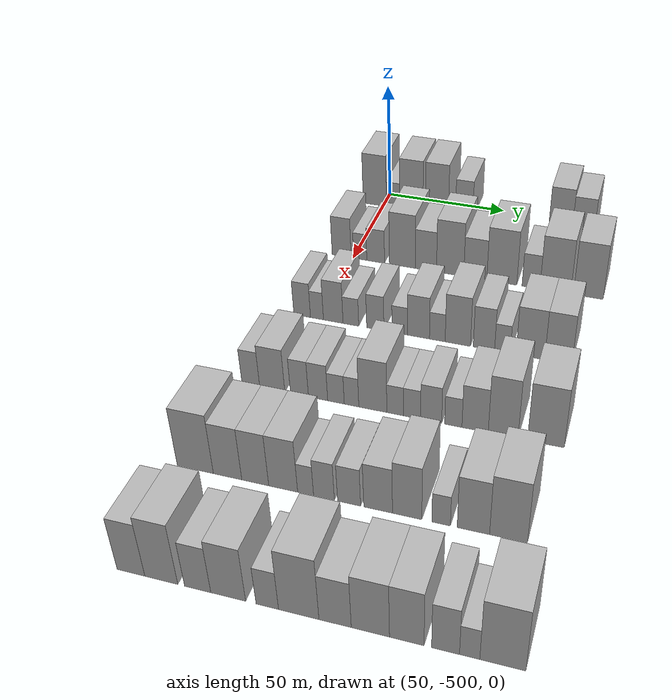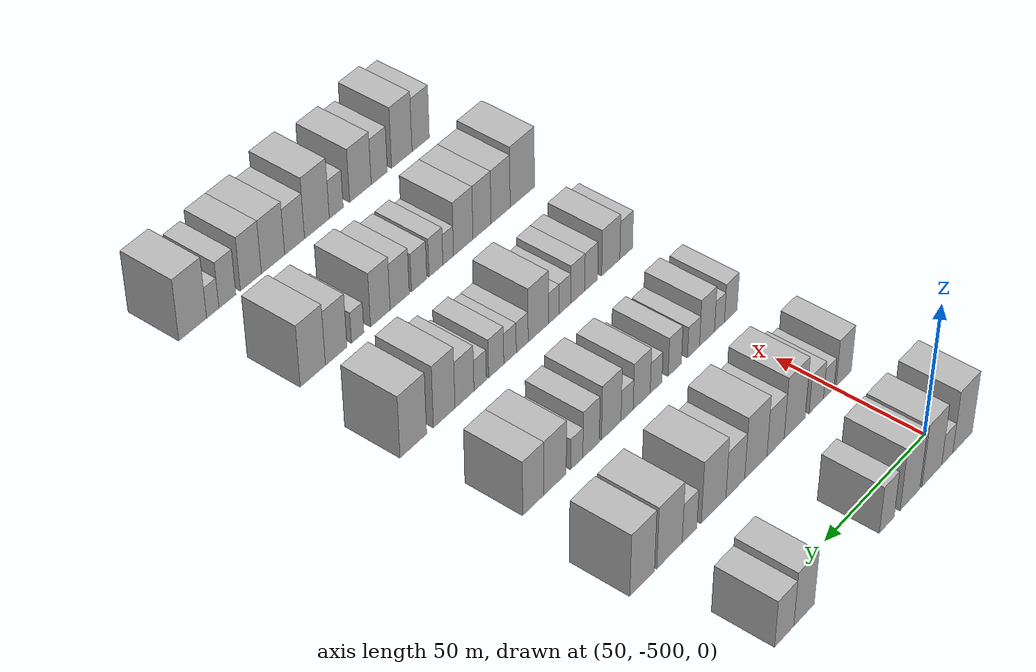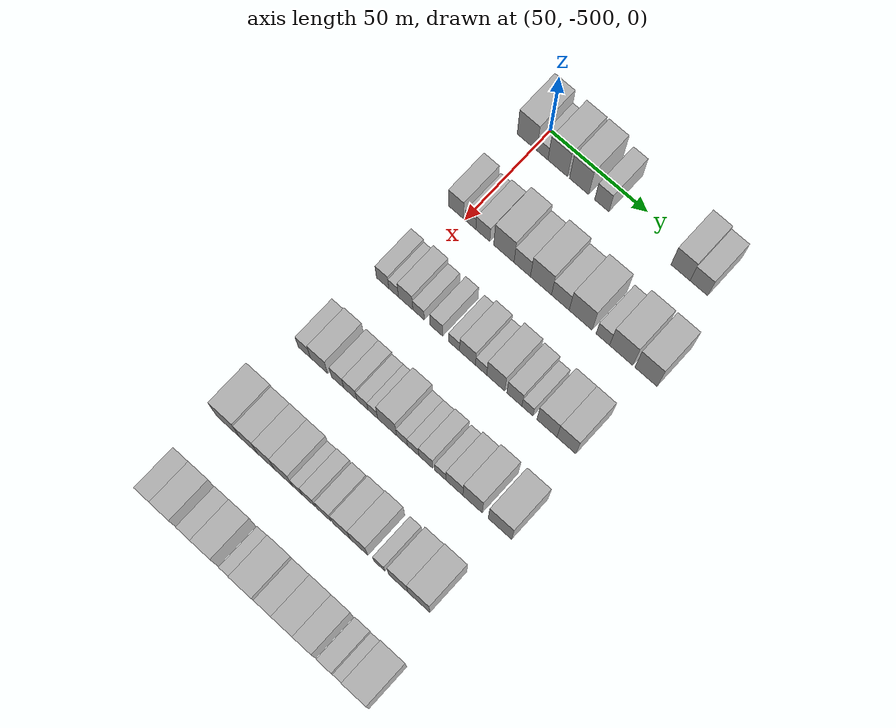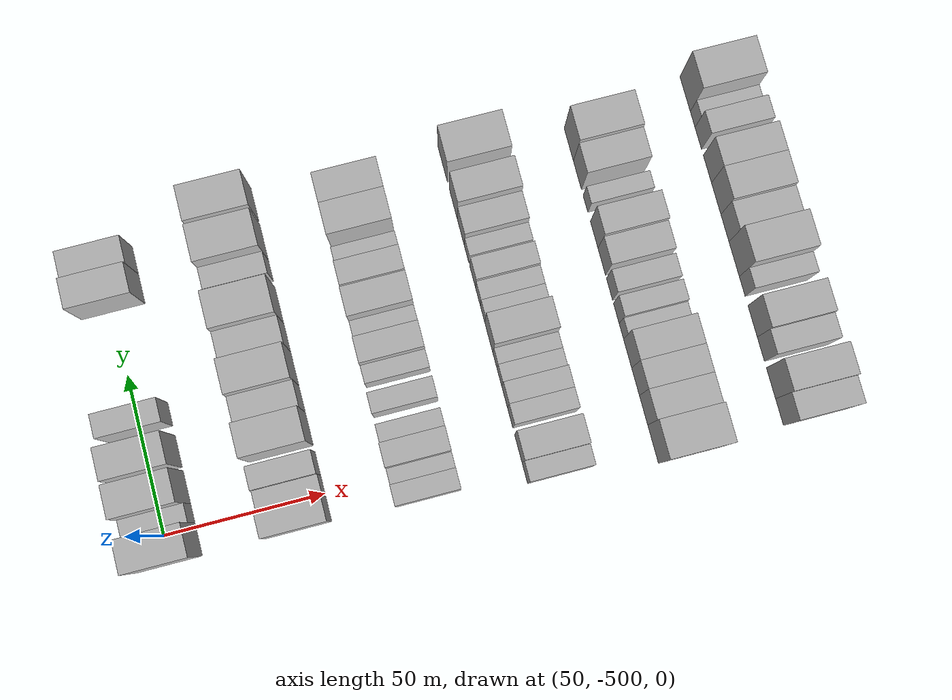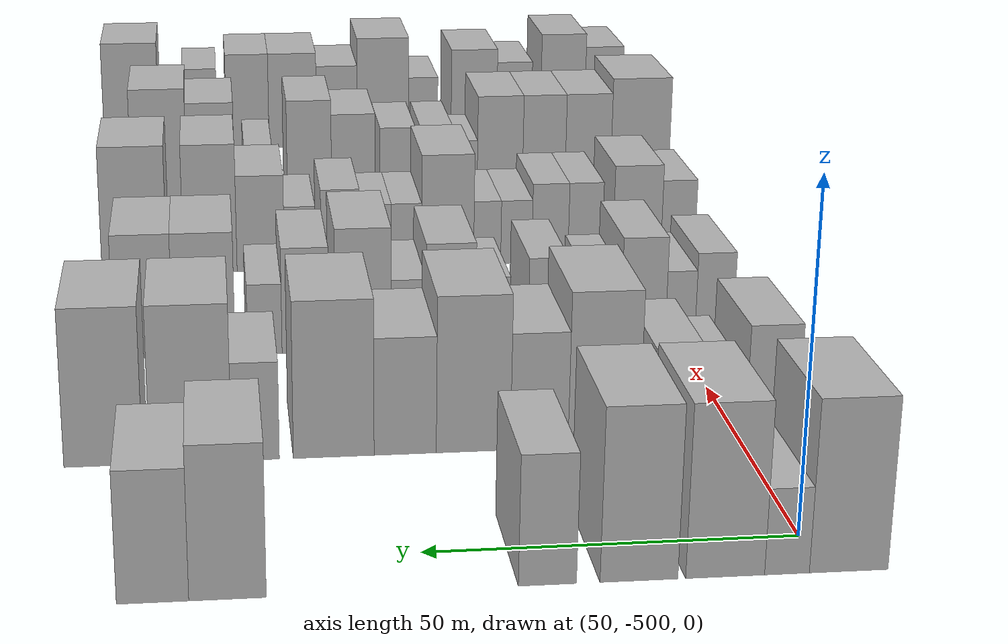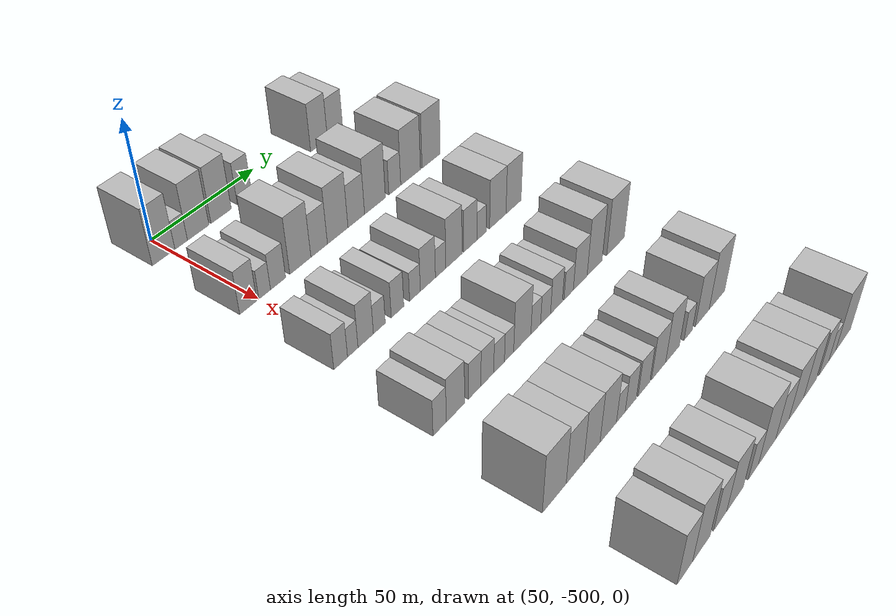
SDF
<sdf version="1.6">
 <world name="default">
  <model name="building_11">
   <static>1</static>
   <pose>50.0000 -503.6404 0 0.000000 0.000000 0.000000</pose>
   <link name="link">
    <pose>0 0 12.00 0 0 0</pose>
    <collision name="collision"><geometry><box><size>20.0000 10.2537 24.0000</size></box></geometry></collision>
    <visual name="visual">
     <cast_shadows>0</cast_shadows>
     <geometry><box><size>20.0000 10.2537 24.0000</size></box></geometry>
     <material>
      <script>
       <uri>model://HANNAS_wall/materials/scripts</uri>
       <uri>model://HANNAS_wall/materials/textures</uri>
       <name>vrc/HANNAS_wall</name>
      </script>
     </material>
    </visual>
   </link>
  </model>
  <model name="building_12">
   <static>1</static>
   <pose>50.0000 -495.6090 0 0.000000 0.000000 0.000000</pose>
   <link name="link">
    <pose>0 0 6.00 0 0 0</pose>
    <collision name="collision"><geometry><box><size>20.0000 5.8091 12.0000</size></box></geometry></collision>
    <visual name="visual">
     <cast_shadows>0</cast_shadows>
     <geometry><box><size>20.0000 5.8091 12.0000</size></box></geometry>
     <material>
      <script>
       <uri>model://HANNAS_wall/materials/scripts</uri>
       <uri>model://HANNAS_wall/materials/textures</uri>
       <name>vrc/HANNAS_wall</name>
      </script>
     </material>
    </visual>
   </link>
  </model>
  <model name="building_13">
   <static>1</static>
   <pose>50.0000 -487.6144 0 0.000000 0.000000 0.000000</pose>
   <link name="link">
    <pose>0 0 12.00 0 0 0</pose>
    <collision name="collision"><geometry><box><size>20.0000 10.1801 24.0000</size></box></geometry></collision>
    <visual name="visual">
     <cast_shadows>0</cast_shadows>
     <geometry><box><size>20.0000 10.1801 24.0000</size></box></geometry>
     <material>
      <script>
       <uri>model://HANNAS_wall/materials/scripts</uri>
       <uri>model://HANNAS_wall/materials/textures</uri>
       <name>vrc/HANNAS_wall</name>
      </script>
     </material>
    </visual>
   </link>
  </model>
  <model name="building_14">
   <static>1</static>
   <pose>50.0000 -476.5391 0 0.000000 0.000000 0.000000</pose>
   <link name="link">
    <pose>0 0 12.00 0 0 0</pose>
    <collision name="collision"><geometry><box><size>20.0000 9.9705 24.0000</size></box></geometry></collision>
    <visual name="visual">
     <cast_shadows>0</cast_shadows>
     <geometry><box><size>20.0000 9.9705 24.0000</size></box></geometry>
     <material>
      <script>
       <uri>model://HANNAS_wall/materials/scripts</uri>
       <uri>model://HANNAS_wall/materials/textures</uri>
       <name>vrc/HANNAS_wall</name>
      </script>
     </material>
    </visual>
   </link>
  </model>
  <model name="building_15">
   <static>1</static>
   <pose>50.0000 -464.8646 0 0.000000 0.000000 0.000000</pose>
   <link name="link">
    <pose>0 0 9.00 0 0 0</pose>
    <collision name="collision"><geometry><box><size>20.0000 7.3786 18.0000</size></box></geometry></collision>
    <visual name="visual">
     <cast_shadows>0</cast_shadows>
     <geometry><box><size>20.0000 7.3786 18.0000</size></box></geometry>
     <material>
      <script>
       <uri>model://HANNAS_wall/materials/scripts</uri>
       <uri>model://HANNAS_wall/materials/textures</uri>
       <name>vrc/HANNAS_wall</name>
      </script>
     </material>
    </visual>
   </link>
  </model>
  <model name="building_16">
   <static>1</static>
   <pose>50.0000 -424.8164 0 0.000000 0.000000 0.000000</pose>
   <link name="link">
    <pose>0 0 10.50 0 0 0</pose>
    <collision name="collision"><geometry><box><size>20.0000 9.5725 21.0000</size></box></geometry></collision>
    <visual name="visual">
     <cast_shadows>0</cast_shadows>
     <geometry><box><size>20.0000 9.5725 21.0000</size></box></geometry>
     <material>
      <script>
       <uri>model://HANNAS_wall/materials/scripts</uri>
       <uri>model://HANNAS_wall/materials/textures</uri>
       <name>vrc/HANNAS_wall</name>
      </script>
     </material>
    </visual>
   </link>
  </model>
  <model name="building_17">
   <static>1</static>
   <pose>50.0000 -415.5871 0 0.000000 0.000000 0.000000</pose>
   <link name="link">
    <pose>0 0 9.00 0 0 0</pose>
    <collision name="collision"><geometry><box><size>20.0000 8.8862 18.0000</size></box></geometry></collision>
    <visual name="visual">
     <cast_shadows>0</cast_shadows>
     <geometry><box><size>20.0000 8.8862 18.0000</size></box></geometry>
     <material>
      <script>
       <uri>model://HANNAS_wall/materials/scripts</uri>
       <uri>model://HANNAS_wall/materials/textures</uri>
       <name>vrc/HANNAS_wall</name>
      </script>
     </material>
    </visual>
   </link>
  </model>
  <model name="building_145">
   <static>1</static>
   <pose>90.0000 -504.7364 0 0.000000 0.000000 0.000000</pose>
   <link name="link">
    <pose>0 0 9.00 0 0 0</pose>
    <collision name="collision"><geometry><box><size>20.0000 7.8425 18.0000</size></box></geometry></collision>
    <visual name="visual">
     <cast_shadows>0</cast_shadows>
     <geometry><box><size>20.0000 7.8425 18.0000</size></box></geometry>
     <material>
      <script>
       <uri>model://HANNAS_wall/materials/scripts</uri>
       <uri>model://HANNAS_wall/materials/textures</uri>
       <name>vrc/HANNAS_wall</name>
      </script>
     </material>
    </visual>
   </link>
  </model>
  <model name="building_146">
   <static>1</static>
   <pose>90.0000 -497.0906 0 0.000000 0.000000 0.000000</pose>
   <link name="link">
    <pose>0 0 6.00 0 0 0</pose>
    <collision name="collision"><geometry><box><size>20.0000 5.4492 12.0000</size></box></geometry></collision>
    <visual name="visual">
     <cast_shadows>0</cast_shadows>
     <geometry><box><size>20.0000 5.4492 12.0000</size></box></geometry>
     <material>
      <script>
       <uri>model://HANNAS_wall/materials/scripts</uri>
       <uri>model://HANNAS_wall/materials/textures</uri>
       <name>vrc/HANNAS_wall</name>
      </script>
     </material>
    </visual>
   </link>
  </model>
  <model name="building_147">
   <static>1</static>
   <pose>90.0000 -490.7368 0 0.000000 0.000000 0.000000</pose>
   <link name="link">
    <pose>0 0 7.50 0 0 0</pose>
    <collision name="collision"><geometry><box><size>20.0000 7.2585 15.0000</size></box></geometry></collision>
    <visual name="visual">
     <cast_shadows>0</cast_shadows>
     <geometry><box><size>20.0000 7.2585 15.0000</size></box></geometry>
     <material>
      <script>
       <uri>model://HANNAS_wall/materials/scripts</uri>
       <uri>model://HANNAS_wall/materials/textures</uri>
       <name>vrc/HANNAS_wall</name>
      </script>
     </material>
    </visual>
   </link>
  </model>
  <model name="building_148">
   <static>1</static>
   <pose>90.0000 -479.8664 0 0.000000 0.000000 0.000000</pose>
   <link name="link">
    <pose>0 0 12.00 0 0 0</pose>
    <collision name="collision"><geometry><box><size>20.0000 10.4822 24.0000</size></box></geometry></collision>
    <visual name="visual">
     <cast_shadows>0</cast_shadows>
     <geometry><box><size>20.0000 10.4822 24.0000</size></box></geometry>
     <material>
      <script>
       <uri>model://HANNAS_wall/materials/scripts</uri>
       <uri>model://HANNAS_wall/materials/textures</uri>
       <name>vrc/HANNAS_wall</name>
      </script>
     </material>
    </visual>
   </link>
  </model>
  <model name="building_149">
   <static>1</static>
   <pose>90.0000 -470.4090 0 0.000000 0.000000 0.000000</pose>
   <link name="link">
    <pose>0 0 9.00 0 0 0</pose>
    <collision name="collision"><geometry><box><size>20.0000 8.4327 18.0000</size></box></geometry></collision>
    <visual name="visual">
     <cast_shadows>0</cast_shadows>
     <geometry><box><size>20.0000 8.4327 18.0000</size></box></geometry>
     <material>
      <script>
       <uri>model://HANNAS_wall/materials/scripts</uri>
       <uri>model://HANNAS_wall/materials/textures</uri>
       <name>vrc/HANNAS_wall</name>
      </script>
     </material>
    </visual>
   </link>
  </model>
  <model name="building_150">
   <static>1</static>
   <pose>90.0000 -460.8018 0 0.000000 0.000000 0.000000</pose>
   <link name="link">
    <pose>0 0 12.00 0 0 0</pose>
    <collision name="collision"><geometry><box><size>20.0000 10.7815 24.0000</size></box></geometry></collision>
    <visual name="visual">
     <cast_shadows>0</cast_shadows>
     <geometry><box><size>20.0000 10.7815 24.0000</size></box></geometry>
     <material>
      <script>
       <uri>model://HANNAS_wall/materials/scripts</uri>
       <uri>model://HANNAS_wall/materials/textures</uri>
       <name>vrc/HANNAS_wall</name>
      </script>
     </material>
    </visual>
   </link>
  </model>
  <model name="building_151">
   <static>1</static>
   <pose>90.0000 -450.9117 0 0.000000 0.000000 0.000000</pose>
   <link name="link">
    <pose>0 0 9.00 0 0 0</pose>
    <collision name="collision"><geometry><box><size>20.0000 8.9986 18.0000</size></box></geometry></collision>
    <visual name="visual">
     <cast_shadows>0</cast_shadows>
     <geometry><box><size>20.0000 8.9986 18.0000</size></box></geometry>
     <material>
      <script>
       <uri>model://HANNAS_wall/materials/scripts</uri>
       <uri>model://HANNAS_wall/materials/textures</uri>
       <name>vrc/HANNAS_wall</name>
      </script>
     </material>
    </visual>
   </link>
  </model>
  <model name="building_152">
   <static>1</static>
   <pose>90.0000 -440.6104 0 0.000000 0.000000 0.000000</pose>
   <link name="link">
    <pose>0 0 12.00 0 0 0</pose>
    <collision name="collision"><geometry><box><size>20.0000 11.6040 24.0000</size></box></geometry></collision>
    <visual name="visual">
     <cast_shadows>0</cast_shadows>
     <geometry><box><size>20.0000 11.6040 24.0000</size></box></geometry>
     <material>
      <script>
       <uri>model://HANNAS_wall/materials/scripts</uri>
       <uri>model://HANNAS_wall/materials/textures</uri>
       <name>vrc/HANNAS_wall</name>
      </script>
     </material>
    </visual>
   </link>
  </model>
  <model name="building_153">
   <static>1</static>
   <pose>90.0000 -429.3965 0 0.000000 0.000000 0.000000</pose>
   <link name="link">
    <pose>0 0 7.50 0 0 0</pose>
    <collision name="collision"><geometry><box><size>20.0000 6.8237 15.0000</size></box></geometry></collision>
    <visual name="visual">
     <cast_shadows>0</cast_shadows>
     <geometry><box><size>20.0000 6.8237 15.0000</size></box></geometry>
     <material>
      <script>
       <uri>model://HANNAS_wall/materials/scripts</uri>
       <uri>model://HANNAS_wall/materials/textures</uri>
       <name>vrc/HANNAS_wall</name>
      </script>
     </material>
    </visual>
   </link>
  </model>
  <model name="building_154">
   <static>1</static>
   <pose>90.0000 -420.1656 0 0.000000 0.000000 0.000000</pose>
   <link name="link">
    <pose>0 0 12.00 0 0 0</pose>
    <collision name="collision"><geometry><box><size>20.0000 11.6381 24.0000</size></box></geometry></collision>
    <visual name="visual">
     <cast_shadows>0</cast_shadows>
     <geometry><box><size>20.0000 11.6381 24.0000</size></box></geometry>
     <material>
      <script>
       <uri>model://HANNAS_wall/materials/scripts</uri>
       <uri>model://HANNAS_wall/materials/textures</uri>
       <name>vrc/HANNAS_wall</name>
      </script>
     </material>
    </visual>
   </link>
  </model>
  <model name="building_155">
   <static>1</static>
   <pose>90.0000 -407.7980 0 0.000000 0.000000 0.000000</pose>
   <link name="link">
    <pose>0 0 12.00 0 0 0</pose>
    <collision name="collision"><geometry><box><size>20.0000 11.0971 24.0000</size></box></geometry></collision>
    <visual name="visual">
     <cast_shadows>0</cast_shadows>
     <geometry><box><size>20.0000 11.0971 24.0000</size></box></geometry>
     <material>
      <script>
       <uri>model://HANNAS_wall/materials/scripts</uri>
       <uri>model://HANNAS_wall/materials/textures</uri>
       <name>vrc/HANNAS_wall</name>
      </script>
     </material>
    </visual>
   </link>
  </model>
  <model name="building_284">
   <static>1</static>
   <pose>130.0000 -506.1889 0 0.000000 0.000000 0.000000</pose>
   <link name="link">
    <pose>0 0 7.50 0 0 0</pose>
    <collision name="collision"><geometry><box><size>20.0000 6.4199 15.0000</size></box></geometry></collision>
    <visual name="visual">
     <cast_shadows>0</cast_shadows>
     <geometry><box><size>20.0000 6.4199 15.0000</size></box></geometry>
     <material>
      <script>
       <uri>model://HANNAS_wall/materials/scripts</uri>
       <uri>model://HANNAS_wall/materials/textures</uri>
       <name>vrc/HANNAS_wall</name>
      </script>
     </material>
    </visual>
   </link>
  </model>
  <model name="building_285">
   <static>1</static>
   <pose>130.0000 -500.4883 0 0.000000 0.000000 0.000000</pose>
   <link name="link">
    <pose>0 0 6.00 0 0 0</pose>
    <collision name="collision"><geometry><box><size>20.0000 4.9811 12.0000</size></box></geometry></collision>
    <visual name="visual">
     <cast_shadows>0</cast_shadows>
     <geometry><box><size>20.0000 4.9811 12.0000</size></box></geometry>
     <material>
      <script>
       <uri>model://HANNAS_wall/materials/scripts</uri>
       <uri>model://HANNAS_wall/materials/textures</uri>
       <name>vrc/HANNAS_wall</name>
      </script>
     </material>
    </visual>
   </link>
  </model>
  <model name="building_286">
   <static>1</static>
   <pose>130.0000 -494.2536 0 0.000000 0.000000 0.000000</pose>
   <link name="link">
    <pose>0 0 9.00 0 0 0</pose>
    <collision name="collision"><geometry><box><size>20.0000 7.4883 18.0000</size></box></geometry></collision>
    <visual name="visual">
     <cast_shadows>0</cast_shadows>
     <geometry><box><size>20.0000 7.4883 18.0000</size></box></geometry>
     <material>
      <script>
       <uri>model://HANNAS_wall/materials/scripts</uri>
       <uri>model://HANNAS_wall/materials/textures</uri>
       <name>vrc/HANNAS_wall</name>
      </script>
     </material>
    </visual>
   </link>
  </model>
  <model name="building_287">
   <static>1</static>
   <pose>130.0000 -487.5403 0 0.000000 0.000000 0.000000</pose>
   <link name="link">
    <pose>0 0 6.00 0 0 0</pose>
    <collision name="collision"><geometry><box><size>20.0000 5.9384 12.0000</size></box></geometry></collision>
    <visual name="visual">
     <cast_shadows>0</cast_shadows>
     <geometry><box><size>20.0000 5.9384 12.0000</size></box></geometry>
     <material>
      <script>
       <uri>model://HANNAS_wall/materials/scripts</uri>
       <uri>model://HANNAS_wall/materials/textures</uri>
       <name>vrc/HANNAS_wall</name>
      </script>
     </material>
    </visual>
   </link>
  </model>
  <model name="building_288">
   <static>1</static>
   <pose>130.0000 -478.3413 0 0.000000 0.000000 0.000000</pose>
   <link name="link">
    <pose>0 0 7.50 0 0 0</pose>
    <collision name="collision"><geometry><box><size>20.0000 6.4596 15.0000</size></box></geometry></collision>
    <visual name="visual">
     <cast_shadows>0</cast_shadows>
     <geometry><box><size>20.0000 6.4596 15.0000</size></box></geometry>
     <material>
      <script>
       <uri>model://HANNAS_wall/materials/scripts</uri>
       <uri>model://HANNAS_wall/materials/textures</uri>
       <name>vrc/HANNAS_wall</name>
      </script>
     </material>
    </visual>
   </link>
  </model>
  <model name="building_289">
   <static>1</static>
   <pose>130.0000 -469.2757 0 0.000000 0.000000 0.000000</pose>
   <link name="link">
    <pose>0 0 6.00 0 0 0</pose>
    <collision name="collision"><geometry><box><size>20.0000 5.6718 12.0000</size></box></geometry></collision>
    <visual name="visual">
     <cast_shadows>0</cast_shadows>
     <geometry><box><size>20.0000 5.6718 12.0000</size></box></geometry>
     <material>
      <script>
       <uri>model://HANNAS_wall/materials/scripts</uri>
       <uri>model://HANNAS_wall/materials/textures</uri>
       <name>vrc/HANNAS_wall</name>
      </script>
     </material>
    </visual>
   </link>
  </model>
  <model name="building_290">
   <static>1</static>
   <pose>130.0000 -462.3742 0 0.000000 0.000000 0.000000</pose>
   <link name="link">
    <pose>0 0 9.00 0 0 0</pose>
    <collision name="collision"><geometry><box><size>20.0000 8.1312 18.0000</size></box></geometry></collision>
    <visual name="visual">
     <cast_shadows>0</cast_shadows>
     <geometry><box><size>20.0000 8.1312 18.0000</size></box></geometry>
     <material>
      <script>
       <uri>model://HANNAS_wall/materials/scripts</uri>
       <uri>model://HANNAS_wall/materials/textures</uri>
       <name>vrc/HANNAS_wall</name>
      </script>
     </material>
    </visual>
   </link>
  </model>
  <model name="building_291">
   <static>1</static>
   <pose>130.0000 -455.4448 0 0.000000 0.000000 0.000000</pose>
   <link name="link">
    <pose>0 0 6.00 0 0 0</pose>
    <collision name="collision"><geometry><box><size>20.0000 5.7275 12.0000</size></box></geometry></collision>
    <visual name="visual">
     <cast_shadows>0</cast_shadows>
     <geometry><box><size>20.0000 5.7275 12.0000</size></box></geometry>
     <material>
      <script>
       <uri>model://HANNAS_wall/materials/scripts</uri>
       <uri>model://HANNAS_wall/materials/textures</uri>
       <name>vrc/HANNAS_wall</name>
      </script>
     </material>
    </visual>
   </link>
  </model>
  <model name="building_292">
   <static>1</static>
   <pose>130.0000 -448.0114 0 0.000000 0.000000 0.000000</pose>
   <link name="link">
    <pose>0 0 10.50 0 0 0</pose>
    <collision name="collision"><geometry><box><size>20.0000 9.1393 21.0000</size></box></geometry></collision>
    <visual name="visual">
     <cast_shadows>0</cast_shadows>
     <geometry><box><size>20.0000 9.1393 21.0000</size></box></geometry>
     <material>
      <script>
       <uri>model://HANNAS_wall/materials/scripts</uri>
       <uri>model://HANNAS_wall/materials/textures</uri>
       <name>vrc/HANNAS_wall</name>
      </script>
     </material>
    </visual>
   </link>
  </model>
  <model name="building_293">
   <static>1</static>
   <pose>130.0000 -438.6374 0 0.000000 0.000000 0.000000</pose>
   <link name="link">
    <pose>0 0 9.00 0 0 0</pose>
    <collision name="collision"><geometry><box><size>20.0000 7.6087 18.0000</size></box></geometry></collision>
    <visual name="visual">
     <cast_shadows>0</cast_shadows>
     <geometry><box><size>20.0000 7.6087 18.0000</size></box></geometry>
     <material>
      <script>
       <uri>model://HANNAS_wall/materials/scripts</uri>
       <uri>model://HANNAS_wall/materials/textures</uri>
       <name>vrc/HANNAS_wall</name>
      </script>
     </material>
    </visual>
   </link>
  </model>
  <model name="building_294">
   <static>1</static>
   <pose>130.0000 -432.0415 0 0.000000 0.000000 0.000000</pose>
   <link name="link">
    <pose>0 0 6.00 0 0 0</pose>
    <collision name="collision"><geometry><box><size>20.0000 5.5831 12.0000</size></box></geometry></collision>
    <visual name="visual">
     <cast_shadows>0</cast_shadows>
     <geometry><box><size>20.0000 5.5831 12.0000</size></box></geometry>
     <material>
      <script>
       <uri>model://HANNAS_wall/materials/scripts</uri>
       <uri>model://HANNAS_wall/materials/textures</uri>
       <name>vrc/HANNAS_wall</name>
      </script>
     </material>
    </visual>
   </link>
  </model>
  <model name="building_295">
   <static>1</static>
   <pose>130.0000 -422.2448 0 0.000000 0.000000 0.000000</pose>
   <link name="link">
    <pose>0 0 10.50 0 0 0</pose>
    <collision name="collision"><geometry><box><size>20.0000 10.0102 21.0000</size></box></geometry></collision>
    <visual name="visual">
     <cast_shadows>0</cast_shadows>
     <geometry><box><size>20.0000 10.0102 21.0000</size></box></geometry>
     <material>
      <script>
       <uri>model://HANNAS_wall/materials/scripts</uri>
       <uri>model://HANNAS_wall/materials/textures</uri>
       <name>vrc/HANNAS_wall</name>
      </script>
     </material>
    </visual>
   </link>
  </model>
  <model name="building_296">
   <static>1</static>
   <pose>130.0000 -412.5059 0 0.000000 0.000000 0.000000</pose>
   <link name="link">
    <pose>0 0 10.50 0 0 0</pose>
    <collision name="collision"><geometry><box><size>20.0000 9.4677 21.0000</size></box></geometry></collision>
    <visual name="visual">
     <cast_shadows>0</cast_shadows>
     <geometry><box><size>20.0000 9.4677 21.0000</size></box></geometry>
     <material>
      <script>
       <uri>model://HANNAS_wall/materials/scripts</uri>
       <uri>model://HANNAS_wall/materials/textures</uri>
       <name>vrc/HANNAS_wall</name>
      </script>
     </material>
    </visual>
   </link>
  </model>
  <model name="building_424">
   <static>1</static>
   <pose>170.0000 -509.3806 0 0.000000 0.000000 0.000000</pose>
   <link name="link">
    <pose>0 0 7.50 0 0 0</pose>
    <collision name="collision"><geometry><box><size>20.0000 6.3670 15.0000</size></box></geometry></collision>
    <visual name="visual">
     <cast_shadows>0</cast_shadows>
     <geometry><box><size>20.0000 6.3670 15.0000</size></box></geometry>
     <material>
      <script>
       <uri>model://HANNAS_wall/materials/scripts</uri>
       <uri>model://HANNAS_wall/materials/textures</uri>
       <name>vrc/HANNAS_wall</name>
      </script>
     </material>
    </visual>
   </link>
  </model>
  <model name="building_425">
   <static>1</static>
   <pose>170.0000 -501.7129 0 0.000000 0.000000 0.000000</pose>
   <link name="link">
    <pose>0 0 9.00 0 0 0</pose>
    <collision name="collision"><geometry><box><size>20.0000 8.9683 18.0000</size></box></geometry></collision>
    <visual name="visual">
     <cast_shadows>0</cast_shadows>
     <geometry><box><size>20.0000 8.9683 18.0000</size></box></geometry>
     <material>
      <script>
       <uri>model://HANNAS_wall/materials/scripts</uri>
       <uri>model://HANNAS_wall/materials/textures</uri>
       <name>vrc/HANNAS_wall</name>
      </script>
     </material>
    </visual>
   </link>
  </model>
  <model name="building_426">
   <static>1</static>
   <pose>170.0000 -492.0668 0 0.000000 0.000000 0.000000</pose>
   <link name="link">
    <pose>0 0 7.50 0 0 0</pose>
    <collision name="collision"><geometry><box><size>20.0000 6.3239 15.0000</size></box></geometry></collision>
    <visual name="visual">
     <cast_shadows>0</cast_shadows>
     <geometry><box><size>20.0000 6.3239 15.0000</size></box></geometry>
     <material>
      <script>
       <uri>model://HANNAS_wall/materials/scripts</uri>
       <uri>model://HANNAS_wall/materials/textures</uri>
       <name>vrc/HANNAS_wall</name>
      </script>
     </material>
    </visual>
   </link>
  </model>
  <model name="building_427">
   <static>1</static>
   <pose>170.0000 -485.5479 0 0.000000 0.000000 0.000000</pose>
   <link name="link">
    <pose>0 0 7.50 0 0 0</pose>
    <collision name="collision"><geometry><box><size>20.0000 6.7140 15.0000</size></box></geometry></collision>
    <visual name="visual">
     <cast_shadows>0</cast_shadows>
     <geometry><box><size>20.0000 6.7140 15.0000</size></box></geometry>
     <material>
      <script>
       <uri>model://HANNAS_wall/materials/scripts</uri>
       <uri>model://HANNAS_wall/materials/textures</uri>
       <name>vrc/HANNAS_wall</name>
      </script>
     </material>
    </visual>
   </link>
  </model>
  <model name="building_428">
   <static>1</static>
   <pose>170.0000 -479.3226 0 0.000000 0.000000 0.000000</pose>
   <link name="link">
    <pose>0 0 6.00 0 0 0</pose>
    <collision name="collision"><geometry><box><size>20.0000 5.7367 12.0000</size></box></geometry></collision>
    <visual name="visual">
     <cast_shadows>0</cast_shadows>
     <geometry><box><size>20.0000 5.7367 12.0000</size></box></geometry>
     <material>
      <script>
       <uri>model://HANNAS_wall/materials/scripts</uri>
       <uri>model://HANNAS_wall/materials/textures</uri>
       <name>vrc/HANNAS_wall</name>
      </script>
     </material>
    </visual>
   </link>
  </model>
  <model name="building_429">
   <static>1</static>
   <pose>170.0000 -473.9558 0 0.000000 0.000000 0.000000</pose>
   <link name="link">
    <pose>0 0 6.00 0 0 0</pose>
    <collision name="collision"><geometry><box><size>20.0000 4.9968 12.0000</size></box></geometry></collision>
    <visual name="visual">
     <cast_shadows>0</cast_shadows>
     <geometry><box><size>20.0000 4.9968 12.0000</size></box></geometry>
     <material>
      <script>
       <uri>model://HANNAS_wall/materials/scripts</uri>
       <uri>model://HANNAS_wall/materials/textures</uri>
       <name>vrc/HANNAS_wall</name>
      </script>
     </material>
    </visual>
   </link>
  </model>
  <model name="building_430">
   <static>1</static>
   <pose>170.0000 -466.6658 0 0.000000 0.000000 0.000000</pose>
   <link name="link">
    <pose>0 0 10.50 0 0 0</pose>
    <collision name="collision"><geometry><box><size>20.0000 9.5832 21.0000</size></box></geometry></collision>
    <visual name="visual">
     <cast_shadows>0</cast_shadows>
     <geometry><box><size>20.0000 9.5832 21.0000</size></box></geometry>
     <material>
      <script>
       <uri>model://HANNAS_wall/materials/scripts</uri>
       <uri>model://HANNAS_wall/materials/textures</uri>
       <name>vrc/HANNAS_wall</name>
      </script>
     </material>
    </visual>
   </link>
  </model>
  <model name="building_431">
   <static>1</static>
   <pose>170.0000 -459.1109 0 0.000000 0.000000 0.000000</pose>
   <link name="link">
    <pose>0 0 6.00 0 0 0</pose>
    <collision name="collision"><geometry><box><size>20.0000 5.5267 12.0000</size></box></geometry></collision>
    <visual name="visual">
     <cast_shadows>0</cast_shadows>
     <geometry><box><size>20.0000 5.5267 12.0000</size></box></geometry>
     <material>
      <script>
       <uri>model://HANNAS_wall/materials/scripts</uri>
       <uri>model://HANNAS_wall/materials/textures</uri>
       <name>vrc/HANNAS_wall</name>
      </script>
     </material>
    </visual>
   </link>
  </model>
  <model name="building_432">
   <static>1</static>
   <pose>170.0000 -453.4471 0 0.000000 0.000000 0.000000</pose>
   <link name="link">
    <pose>0 0 6.00 0 0 0</pose>
    <collision name="collision"><geometry><box><size>20.0000 5.8009 12.0000</size></box></geometry></collision>
    <visual name="visual">
     <cast_shadows>0</cast_shadows>
     <geometry><box><size>20.0000 5.8009 12.0000</size></box></geometry>
     <material>
      <script>
       <uri>model://HANNAS_wall/materials/scripts</uri>
       <uri>model://HANNAS_wall/materials/textures</uri>
       <name>vrc/HANNAS_wall</name>
      </script>
     </material>
    </visual>
   </link>
  </model>
  <model name="building_433">
   <static>1</static>
   <pose>170.0000 -447.0454 0 0.000000 0.000000 0.000000</pose>
   <link name="link">
    <pose>0 0 7.50 0 0 0</pose>
    <collision name="collision"><geometry><box><size>20.0000 7.0026 15.0000</size></box></geometry></collision>
    <visual name="visual">
     <cast_shadows>0</cast_shadows>
     <geometry><box><size>20.0000 7.0026 15.0000</size></box></geometry>
     <material>
      <script>
       <uri>model://HANNAS_wall/materials/scripts</uri>
       <uri>model://HANNAS_wall/materials/textures</uri>
       <name>vrc/HANNAS_wall</name>
      </script>
     </material>
    </visual>
   </link>
  </model>
  <model name="building_434">
   <static>1</static>
   <pose>170.0000 -439.7192 0 0.000000 0.000000 0.000000</pose>
   <link name="link">
    <pose>0 0 6.00 0 0 0</pose>
    <collision name="collision"><geometry><box><size>20.0000 5.6497 12.0000</size></box></geometry></collision>
    <visual name="visual">
     <cast_shadows>0</cast_shadows>
     <geometry><box><size>20.0000 5.6497 12.0000</size></box></geometry>
     <material>
      <script>
       <uri>model://HANNAS_wall/materials/scripts</uri>
       <uri>model://HANNAS_wall/materials/textures</uri>
       <name>vrc/HANNAS_wall</name>
      </script>
     </material>
    </visual>
   </link>
  </model>
  <model name="building_435">
   <static>1</static>
   <pose>170.0000 -432.6143 0 0.000000 0.000000 0.000000</pose>
   <link name="link">
    <pose>0 0 9.00 0 0 0</pose>
    <collision name="collision"><geometry><box><size>20.0000 8.5602 18.0000</size></box></geometry></collision>
    <visual name="visual">
     <cast_shadows>0</cast_shadows>
     <geometry><box><size>20.0000 8.5602 18.0000</size></box></geometry>
     <material>
      <script>
       <uri>model://HANNAS_wall/materials/scripts</uri>
       <uri>model://HANNAS_wall/materials/textures</uri>
       <name>vrc/HANNAS_wall</name>
      </script>
     </material>
    </visual>
   </link>
  </model>
  <model name="building_436">
   <static>1</static>
   <pose>170.0000 -423.5336 0 0.000000 0.000000 0.000000</pose>
   <link name="link">
    <pose>0 0 12.00 0 0 0</pose>
    <collision name="collision"><geometry><box><size>20.0000 9.6012 24.0000</size></box></geometry></collision>
    <visual name="visual">
     <cast_shadows>0</cast_shadows>
     <geometry><box><size>20.0000 9.6012 24.0000</size></box></geometry>
     <material>
      <script>
       <uri>model://HANNAS_wall/materials/scripts</uri>
       <uri>model://HANNAS_wall/materials/textures</uri>
       <name>vrc/HANNAS_wall</name>
      </script>
     </material>
    </visual>
   </link>
  </model>
  <model name="building_437">
   <static>1</static>
   <pose>170.0000 -409.9213 0 0.000000 0.000000 0.000000</pose>
   <link name="link">
    <pose>0 0 12.00 0 0 0</pose>
    <collision name="collision"><geometry><box><size>20.0000 11.6235 24.0000</size></box></geometry></collision>
    <visual name="visual">
     <cast_shadows>0</cast_shadows>
     <geometry><box><size>20.0000 11.6235 24.0000</size></box></geometry>
     <material>
      <script>
       <uri>model://HANNAS_wall/materials/scripts</uri>
       <uri>model://HANNAS_wall/materials/textures</uri>
       <name>vrc/HANNAS_wall</name>
      </script>
     </material>
    </visual>
   </link>
  </model>
  <model name="building_566">
   <static>1</static>
   <pose>210.0000 -510.6890 0 0.000000 0.000000 0.000000</pose>
   <link name="link">
    <pose>0 0 12.00 0 0 0</pose>
    <collision name="collision"><geometry><box><size>20.0000 11.9856 24.0000</size></box></geometry></collision>
    <visual name="visual">
     <cast_shadows>0</cast_shadows>
     <geometry><box><size>20.0000 11.9856 24.0000</size></box></geometry>
     <material>
      <script>
       <uri>model://HANNAS_wall/materials/scripts</uri>
       <uri>model://HANNAS_wall/materials/textures</uri>
       <name>vrc/HANNAS_wall</name>
      </script>
     </material>
    </visual>
   </link>
  </model>
  <model name="building_567">
   <static>1</static>
   <pose>210.0000 -500.0459 0 0.000000 0.000000 0.000000</pose>
   <link name="link">
    <pose>0 0 10.50 0 0 0</pose>
    <collision name="collision"><geometry><box><size>20.0000 9.3007 21.0000</size></box></geometry></collision>
    <visual name="visual">
     <cast_shadows>0</cast_shadows>
     <geometry><box><size>20.0000 9.3007 21.0000</size></box></geometry>
     <material>
      <script>
       <uri>model://HANNAS_wall/materials/scripts</uri>
       <uri>model://HANNAS_wall/materials/textures</uri>
       <name>vrc/HANNAS_wall</name>
      </script>
     </material>
    </visual>
   </link>
  </model>
  <model name="building_568">
   <static>1</static>
   <pose>210.0000 -491.0442 0 0.000000 0.000000 0.000000</pose>
   <link name="link">
    <pose>0 0 10.50 0 0 0</pose>
    <collision name="collision"><geometry><box><size>20.0000 8.7026 21.0000</size></box></geometry></collision>
    <visual name="visual">
     <cast_shadows>0</cast_shadows>
     <geometry><box><size>20.0000 8.7026 21.0000</size></box></geometry>
     <material>
      <script>
       <uri>model://HANNAS_wall/materials/scripts</uri>
       <uri>model://HANNAS_wall/materials/textures</uri>
       <name>vrc/HANNAS_wall</name>
      </script>
     </material>
    </visual>
   </link>
  </model>
  <model name="building_569">
   <static>1</static>
   <pose>210.0000 -482.0813 0 0.000000 0.000000 0.000000</pose>
   <link name="link">
    <pose>0 0 10.50 0 0 0</pose>
    <collision name="collision"><geometry><box><size>20.0000 9.2232 21.0000</size></box></geometry></collision>
    <visual name="visual">
     <cast_shadows>0</cast_shadows>
     <geometry><box><size>20.0000 9.2232 21.0000</size></box></geometry>
     <material>
      <script>
       <uri>model://HANNAS_wall/materials/scripts</uri>
       <uri>model://HANNAS_wall/materials/textures</uri>
       <name>vrc/HANNAS_wall</name>
      </script>
     </material>
    </visual>
   </link>
  </model>
  <model name="building_570">
   <static>1</static>
   <pose>210.0000 -474.9507 0 0.000000 0.000000 0.000000</pose>
   <link name="link">
    <pose>0 0 6.00 0 0 0</pose>
    <collision name="collision"><geometry><box><size>20.0000 5.0382 12.0000</size></box></geometry></collision>
    <visual name="visual">
     <cast_shadows>0</cast_shadows>
     <geometry><box><size>20.0000 5.0382 12.0000</size></box></geometry>
     <material>
      <script>
       <uri>model://HANNAS_wall/materials/scripts</uri>
       <uri>model://HANNAS_wall/materials/textures</uri>
       <name>vrc/HANNAS_wall</name>
      </script>
     </material>
    </visual>
   </link>
  </model>
  <model name="building_571">
   <static>1</static>
   <pose>210.0000 -469.1754 0 0.000000 0.000000 0.000000</pose>
   <link name="link">
    <pose>0 0 7.50 0 0 0</pose>
    <collision name="collision"><geometry><box><size>20.0000 6.5123 15.0000</size></box></geometry></collision>
    <visual name="visual">
     <cast_shadows>0</cast_shadows>
     <geometry><box><size>20.0000 6.5123 15.0000</size></box></geometry>
     <material>
      <script>
       <uri>model://HANNAS_wall/materials/scripts</uri>
       <uri>model://HANNAS_wall/materials/textures</uri>
       <name>vrc/HANNAS_wall</name>
      </script>
     </material>
    </visual>
   </link>
  </model>
  <model name="building_572">
   <static>1</static>
   <pose>210.0000 -461.3590 0 0.000000 0.000000 0.000000</pose>
   <link name="link">
    <pose>0 0 7.50 0 0 0</pose>
    <collision name="collision"><geometry><box><size>20.0000 7.1206 15.0000</size></box></geometry></collision>
    <visual name="visual">
     <cast_shadows>0</cast_shadows>
     <geometry><box><size>20.0000 7.1206 15.0000</size></box></geometry>
     <material>
      <script>
       <uri>model://HANNAS_wall/materials/scripts</uri>
       <uri>model://HANNAS_wall/materials/textures</uri>
       <name>vrc/HANNAS_wall</name>
      </script>
     </material>
    </visual>
   </link>
  </model>
  <model name="building_573">
   <static>1</static>
   <pose>210.0000 -452.4201 0 0.000000 0.000000 0.000000</pose>
   <link name="link">
    <pose>0 0 9.00 0 0 0</pose>
    <collision name="collision"><geometry><box><size>20.0000 8.7571 18.0000</size></box></geometry></collision>
    <visual name="visual">
     <cast_shadows>0</cast_shadows>
     <geometry><box><size>20.0000 8.7571 18.0000</size></box></geometry>
     <material>
      <script>
       <uri>model://HANNAS_wall/materials/scripts</uri>
       <uri>model://HANNAS_wall/materials/textures</uri>
       <name>vrc/HANNAS_wall</name>
      </script>
     </material>
    </visual>
   </link>
  </model>
  <model name="building_574">
   <static>1</static>
   <pose>210.0000 -443.6144 0 0.000000 0.000000 0.000000</pose>
   <link name="link">
    <pose>0 0 10.50 0 0 0</pose>
    <collision name="collision"><geometry><box><size>20.0000 8.8542 21.0000</size></box></geometry></collision>
    <visual name="visual">
     <cast_shadows>0</cast_shadows>
     <geometry><box><size>20.0000 8.8542 21.0000</size></box></geometry>
     <material>
      <script>
       <uri>model://HANNAS_wall/materials/scripts</uri>
       <uri>model://HANNAS_wall/materials/textures</uri>
       <name>vrc/HANNAS_wall</name>
      </script>
     </material>
    </visual>
   </link>
  </model>
  <model name="building_575">
   <static>1</static>
   <pose>210.0000 -433.4293 0 0.000000 0.000000 0.000000</pose>
   <link name="link">
    <pose>0 0 6.00 0 0 0</pose>
    <collision name="collision"><geometry><box><size>20.0000 5.5160 12.0000</size></box></geometry></collision>
    <visual name="visual">
     <cast_shadows>0</cast_shadows>
     <geometry><box><size>20.0000 5.5160 12.0000</size></box></geometry>
     <material>
      <script>
       <uri>model://HANNAS_wall/materials/scripts</uri>
       <uri>model://HANNAS_wall/materials/textures</uri>
       <name>vrc/HANNAS_wall</name>
      </script>
     </material>
    </visual>
   </link>
  </model>
  <model name="building_576">
   <static>1</static>
   <pose>210.0000 -423.9352 0 0.000000 0.000000 0.000000</pose>
   <link name="link">
    <pose>0 0 10.50 0 0 0</pose>
    <collision name="collision"><geometry><box><size>20.0000 9.4722 21.0000</size></box></geometry></collision>
    <visual name="visual">
     <cast_shadows>0</cast_shadows>
     <geometry><box><size>20.0000 9.4722 21.0000</size></box></geometry>
     <material>
      <script>
       <uri>model://HANNAS_wall/materials/scripts</uri>
       <uri>model://HANNAS_wall/materials/textures</uri>
       <name>vrc/HANNAS_wall</name>
      </script>
     </material>
    </visual>
   </link>
  </model>
  <model name="building_577">
   <static>1</static>
   <pose>210.0000 -413.7213 0 0.000000 0.000000 0.000000</pose>
   <link name="link">
    <pose>0 0 12.00 0 0 0</pose>
    <collision name="collision"><geometry><box><size>20.0000 10.9555 24.0000</size></box></geometry></collision>
    <visual name="visual">
     <cast_shadows>0</cast_shadows>
     <geometry><box><size>20.0000 10.9555 24.0000</size></box></geometry>
     <material>
      <script>
       <uri>model://HANNAS_wall/materials/scripts</uri>
       <uri>model://HANNAS_wall/materials/textures</uri>
       <name>vrc/HANNAS_wall</name>
      </script>
     </material>
    </visual>
   </link>
  </model>
  <model name="building_705">
   <static>1</static>
   <pose>250.0000 -511.0001 0 0.000000 0.000000 0.000000</pose>
   <link name="link">
    <pose>0 0 10.50 0 0 0</pose>
    <collision name="collision"><geometry><box><size>20.0000 8.4341 21.0000</size></box></geometry></collision>
    <visual name="visual">
     <cast_shadows>0</cast_shadows>
     <geometry><box><size>20.0000 8.4341 21.0000</size></box></geometry>
     <material>
      <script>
       <uri>model://HANNAS_wall/materials/scripts</uri>
       <uri>model://HANNAS_wall/materials/textures</uri>
       <name>vrc/HANNAS_wall</name>
      </script>
     </material>
    </visual>
   </link>
  </model>
  <model name="building_706">
   <static>1</static>
   <pose>250.0000 -501.8470 0 0.000000 0.000000 0.000000</pose>
   <link name="link">
    <pose>0 0 12.00 0 0 0</pose>
    <collision name="collision"><geometry><box><size>20.0000 9.8720 24.0000</size></box></geometry></collision>
    <visual name="visual">
     <cast_shadows>0</cast_shadows>
     <geometry><box><size>20.0000 9.8720 24.0000</size></box></geometry>
     <material>
      <script>
       <uri>model://HANNAS_wall/materials/scripts</uri>
       <uri>model://HANNAS_wall/materials/textures</uri>
       <name>vrc/HANNAS_wall</name>
      </script>
     </material>
    </visual>
   </link>
  </model>
  <model name="building_707">
   <static>1</static>
   <pose>250.0000 -491.0429 0 0.000000 0.000000 0.000000</pose>
   <link name="link">
    <pose>0 0 9.00 0 0 0</pose>
    <collision name="collision"><geometry><box><size>20.0000 7.7362 18.0000</size></box></geometry></collision>
    <visual name="visual">
     <cast_shadows>0</cast_shadows>
     <geometry><box><size>20.0000 7.7362 18.0000</size></box></geometry>
     <material>
      <script>
       <uri>model://HANNAS_wall/materials/scripts</uri>
       <uri>model://HANNAS_wall/materials/textures</uri>
       <name>vrc/HANNAS_wall</name>
      </script>
     </material>
    </visual>
   </link>
  </model>
  <model name="building_708">
   <static>1</static>
   <pose>250.0000 -482.1068 0 0.000000 0.000000 0.000000</pose>
   <link name="link">
    <pose>0 0 10.50 0 0 0</pose>
    <collision name="collision"><geometry><box><size>20.0000 10.1360 21.0000</size></box></geometry></collision>
    <visual name="visual">
     <cast_shadows>0</cast_shadows>
     <geometry><box><size>20.0000 10.1360 21.0000</size></box></geometry>
     <material>
      <script>
       <uri>model://HANNAS_wall/materials/scripts</uri>
       <uri>model://HANNAS_wall/materials/textures</uri>
       <name>vrc/HANNAS_wall</name>
      </script>
     </material>
    </visual>
   </link>
  </model>
  <model name="building_709">
   <static>1</static>
   <pose>250.0000 -470.8318 0 0.000000 0.000000 0.000000</pose>
   <link name="link">
    <pose>0 0 7.50 0 0 0</pose>
    <collision name="collision"><geometry><box><size>20.0000 6.4141 15.0000</size></box></geometry></collision>
    <visual name="visual">
     <cast_shadows>0</cast_shadows>
     <geometry><box><size>20.0000 6.4141 15.0000</size></box></geometry>
     <material>
      <script>
       <uri>model://HANNAS_wall/materials/scripts</uri>
       <uri>model://HANNAS_wall/materials/textures</uri>
       <name>vrc/HANNAS_wall</name>
      </script>
     </material>
    </visual>
   </link>
  </model>
  <model name="building_710">
   <static>1</static>
   <pose>250.0000 -461.9428 0 0.000000 0.000000 0.000000</pose>
   <link name="link">
    <pose>0 0 12.00 0 0 0</pose>
    <collision name="collision"><geometry><box><size>20.0000 11.3639 24.0000</size></box></geometry></collision>
    <visual name="visual">
     <cast_shadows>0</cast_shadows>
     <geometry><box><size>20.0000 11.3639 24.0000</size></box></geometry>
     <material>
      <script>
       <uri>model://HANNAS_wall/materials/scripts</uri>
       <uri>model://HANNAS_wall/materials/textures</uri>
       <name>vrc/HANNAS_wall</name>
      </script>
     </material>
    </visual>
   </link>
  </model>
  <model name="building_711">
   <static>1</static>
   <pose>250.0000 -451.7844 0 0.000000 0.000000 0.000000</pose>
   <link name="link">
    <pose>0 0 9.00 0 0 0</pose>
    <collision name="collision"><geometry><box><size>20.0000 8.9529 18.0000</size></box></geometry></collision>
    <visual name="visual">
     <cast_shadows>0</cast_shadows>
     <geometry><box><size>20.0000 8.9529 18.0000</size></box></geometry>
     <material>
      <script>
       <uri>model://HANNAS_wall/materials/scripts</uri>
       <uri>model://HANNAS_wall/materials/textures</uri>
       <name>vrc/HANNAS_wall</name>
      </script>
     </material>
    </visual>
   </link>
  </model>
  <model name="building_712">
   <static>1</static>
   <pose>250.0000 -442.1050 0 0.000000 0.000000 0.000000</pose>
   <link name="link">
    <pose>0 0 10.50 0 0 0</pose>
    <collision name="collision"><geometry><box><size>20.0000 10.4060 21.0000</size></box></geometry></collision>
    <visual name="visual">
     <cast_shadows>0</cast_shadows>
     <geometry><box><size>20.0000 10.4060 21.0000</size></box></geometry>
     <material>
      <script>
       <uri>model://HANNAS_wall/materials/scripts</uri>
       <uri>model://HANNAS_wall/materials/textures</uri>
       <name>vrc/HANNAS_wall</name>
      </script>
     </material>
    </visual>
   </link>
  </model>
  <model name="building_713">
   <static>1</static>
   <pose>250.0000 -432.2717 0 0.000000 0.000000 0.000000</pose>
   <link name="link">
    <pose>0 0 10.50 0 0 0</pose>
    <collision name="collision"><geometry><box><size>20.0000 9.2606 21.0000</size></box></geometry></collision>
    <visual name="visual">
     <cast_shadows>0</cast_shadows>
     <geometry><box><size>20.0000 9.2606 21.0000</size></box></geometry>
     <material>
      <script>
       <uri>model://HANNAS_wall/materials/scripts</uri>
       <uri>model://HANNAS_wall/materials/textures</uri>
       <name>vrc/HANNAS_wall</name>
      </script>
     </material>
    </visual>
   </link>
  </model>
  <model name="building_714">
   <static>1</static>
   <pose>250.0000 -421.9669 0 0.000000 0.000000 0.000000</pose>
   <link name="link">
    <pose>0 0 9.00 0 0 0</pose>
    <collision name="collision"><geometry><box><size>20.0000 7.3490 18.0000</size></box></geometry></collision>
    <visual name="visual">
     <cast_shadows>0</cast_shadows>
     <geometry><box><size>20.0000 7.3490 18.0000</size></box></geometry>
     <material>
      <script>
       <uri>model://HANNAS_wall/materials/scripts</uri>
       <uri>model://HANNAS_wall/materials/textures</uri>
       <name>vrc/HANNAS_wall</name>
      </script>
     </material>
    </visual>
   </link>
  </model>
  <model name="building_715">
   <static>1</static>
   <pose>250.0000 -415.6480 0 0.000000 0.000000 0.000000</pose>
   <link name="link">
    <pose>0 0 6.00 0 0 0</pose>
    <collision name="collision"><geometry><box><size>20.0000 5.2887 12.0000</size></box></geometry></collision>
    <visual name="visual">
     <cast_shadows>0</cast_shadows>
     <geometry><box><size>20.0000 5.2887 12.0000</size></box></geometry>
     <material>
      <script>
       <uri>model://HANNAS_wall/materials/scripts</uri>
       <uri>model://HANNAS_wall/materials/textures</uri>
       <name>vrc/HANNAS_wall</name>
      </script>
     </material>
    </visual>
   </link>
  </model>
  <model name="building_716">
   <static>1</static>
   <pose>250.0000 -407.0796 0 0.000000 0.000000 0.000000</pose>
   <link name="link">
    <pose>0 0 12.00 0 0 0</pose>
    <collision name="collision"><geometry><box><size>20.0000 11.8482 24.0000</size></box></geometry></collision>
    <visual name="visual">
     <cast_shadows>0</cast_shadows>
     <geometry><box><size>20.0000 11.8482 24.0000</size></box></geometry>
     <material>
      <script>
       <uri>model://HANNAS_wall/materials/scripts</uri>
       <uri>model://HANNAS_wall/materials/textures</uri>
       <name>vrc/HANNAS_wall</name>
      </script>
     </material>
    </visual>
   </link>
  </model>
 </world>
</sdf>
